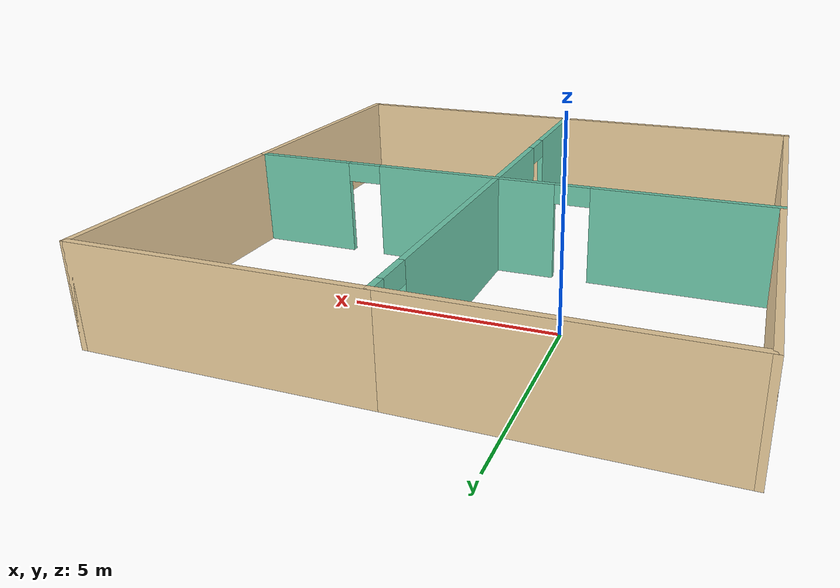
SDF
<?xml version='1.0'?>
<sdf version='1.7'>
  <model name='plane_4'>
    <pose>2.50397 -2.96602 0 0 -0 0</pose>
    <link name='Wall_1'>
      <collision name='Wall_1_Collision'>
        <geometry>
          <box>
            <size>7 0.15 2.5</size>
          </box>
        </geometry>
        <pose>0 0 1.25 0 -0 0</pose>
      </collision>
      <visual name='Wall_1_Visual'>
        <pose>0 0 1.25 0 -0 0</pose>
        <geometry>
          <box>
            <size>7 0.15 2.5</size>
          </box>
        </geometry>
        <material>
          <script>
            <uri>file://media/materials/scripts/gazebo.material</uri>
            <name>Gazebo/Grey</name>
          </script>
          <ambient>0.921569 0.807843 0.615686 1</ambient>
        </material>
        <meta>
          <layer>0</layer>
        </meta>
      </visual>
      <pose>-6.85 -3.425 0 0 -0 1.5708</pose>
    </link>
    <link name='Wall_17'>
      <pose>3.425 0 0 0 -0 0</pose>
      <visual name='Wall_17_Visual_0'>
        <pose>-1.83825 0 1.25 0 -0 0</pose>
        <geometry>
          <box>
            <size>3.3235 0.15 2.5</size>
          </box>
        </geometry>
        <material>
          <script>
            <uri>file://media/materials/scripts/gazebo.material</uri>
            <name>Gazebo/Grey</name>
          </script>
          <ambient>0.435294 0.796078 0.67451 1</ambient>
        </material>
        <meta>
          <layer>0</layer>
        </meta>
      </visual>
      <collision name='Wall_17_Collision_0'>
        <geometry>
          <box>
            <size>3.3235 0.15 2.5</size>
          </box>
        </geometry>
        <pose>-1.83825 0 1.25 0 -0 0</pose>
      </collision>
      <visual name='Wall_17_Visual_1'>
        <pose>2.11175 0 1.25 0 -0 0</pose>
        <geometry>
          <box>
            <size>2.7765 0.15 2.5</size>
          </box>
        </geometry>
        <material>
          <script>
            <uri>file://media/materials/scripts/gazebo.material</uri>
            <name>Gazebo/Grey</name>
          </script>
          <ambient>0.435294 0.796078 0.67451 1</ambient>
        </material>
        <meta>
          <layer>0</layer>
        </meta>
      </visual>
      <collision name='Wall_17_Collision_1'>
        <geometry>
          <box>
            <size>2.7765 0.15 2.5</size>
          </box>
        </geometry>
        <pose>2.11175 0 1.25 0 -0 0</pose>
      </collision>
      <visual name='Wall_17_Visual_2'>
        <pose>0.273504 0 2.25 0 -0 0</pose>
        <geometry>
          <box>
            <size>0.9 0.15 0.5</size>
          </box>
        </geometry>
        <material>
          <script>
            <uri>file://media/materials/scripts/gazebo.material</uri>
            <name>Gazebo/Grey</name>
          </script>
          <ambient>0.435294 0.796078 0.67451 1</ambient>
        </material>
        <meta>
          <layer>0</layer>
        </meta>
      </visual>
      <collision name='Wall_17_Collision_2'>
        <geometry>
          <box>
            <size>0.9 0.15 0.5</size>
          </box>
        </geometry>
        <pose>0.273504 0 2.25 0 -0 0</pose>
      </collision>
    </link>
    <link name='Wall_18'>
      <collision name='Wall_18_Collision'>
        <geometry>
          <box>
            <size>7 0.15 2.5</size>
          </box>
        </geometry>
        <pose>0 0 1.25 0 -0 0</pose>
      </collision>
      <visual name='Wall_18_Visual'>
        <pose>0 0 1.25 0 -0 0</pose>
        <geometry>
          <box>
            <size>7 0.15 2.5</size>
          </box>
        </geometry>
        <material>
          <script>
            <uri>file://media/materials/scripts/gazebo.material</uri>
            <name>Gazebo/Grey</name>
          </script>
          <ambient>0.921569 0.807843 0.615686 1</ambient>
        </material>
        <meta>
          <layer>0</layer>
        </meta>
      </visual>
      <pose>6.85 -3.425 0 0 -0 -1.5708</pose>
    </link>
    <link name='Wall_2'>
      <pose>-3.425 0 0 0 -0 0</pose>
      <visual name='Wall_2_Visual_0'>
        <pose>-1.24968 0 1.25 0 -0 0</pose>
        <geometry>
          <box>
            <size>4.50064 0.15 2.5</size>
          </box>
        </geometry>
        <material>
          <script>
            <uri>file://media/materials/scripts/gazebo.material</uri>
            <name>Gazebo/Grey</name>
          </script>
          <ambient>0.435294 0.796078 0.67451 1</ambient>
        </material>
        <meta>
          <layer>0</layer>
        </meta>
      </visual>
      <collision name='Wall_2_Collision_0'>
        <geometry>
          <box>
            <size>4.50064 0.15 2.5</size>
          </box>
        </geometry>
        <pose>-1.24968 0 1.25 0 -0 0</pose>
      </collision>
      <visual name='Wall_2_Visual_1'>
        <pose>2.70032 0 1.25 0 -0 0</pose>
        <geometry>
          <box>
            <size>1.59936 0.15 2.5</size>
          </box>
        </geometry>
        <material>
          <script>
            <uri>file://media/materials/scripts/gazebo.material</uri>
            <name>Gazebo/Grey</name>
          </script>
          <ambient>0.435294 0.796078 0.67451 1</ambient>
        </material>
        <meta>
          <layer>0</layer>
        </meta>
      </visual>
      <collision name='Wall_2_Collision_1'>
        <geometry>
          <box>
            <size>1.59936 0.15 2.5</size>
          </box>
        </geometry>
        <pose>2.70032 0 1.25 0 -0 0</pose>
      </collision>
      <visual name='Wall_2_Visual_2'>
        <pose>1.45064 0 2.25 0 -0 0</pose>
        <geometry>
          <box>
            <size>0.9 0.15 0.5</size>
          </box>
        </geometry>
        <material>
          <script>
            <uri>file://media/materials/scripts/gazebo.material</uri>
            <name>Gazebo/Grey</name>
          </script>
          <ambient>0.435294 0.796078 0.67451 1</ambient>
        </material>
        <meta>
          <layer>0</layer>
        </meta>
      </visual>
      <collision name='Wall_2_Collision_2'>
        <geometry>
          <box>
            <size>0.9 0.15 0.5</size>
          </box>
        </geometry>
        <pose>1.45064 0 2.25 0 -0 0</pose>
      </collision>
    </link>
    <link name='Wall_20'>
      <collision name='Wall_20_Collision'>
        <geometry>
          <box>
            <size>7 0.15 2.5</size>
          </box>
        </geometry>
        <pose>0 0 1.25 0 -0 0</pose>
      </collision>
      <visual name='Wall_20_Visual'>
        <pose>0 0 1.25 0 -0 0</pose>
        <geometry>
          <box>
            <size>7 0.15 2.5</size>
          </box>
        </geometry>
        <material>
          <script>
            <uri>file://media/materials/scripts/gazebo.material</uri>
            <name>Gazebo/Grey</name>
          </script>
          <ambient>0.921569 0.807843 0.615686 1</ambient>
        </material>
        <meta>
          <layer>0</layer>
        </meta>
      </visual>
      <pose>-6.85 3.425 0 0 -0 1.5708</pose>
    </link>
    <link name='Wall_21'>
      <collision name='Wall_21_Collision'>
        <geometry>
          <box>
            <size>7 0.15 2.5</size>
          </box>
        </geometry>
        <pose>0 0 1.25 0 -0 0</pose>
      </collision>
      <visual name='Wall_21_Visual'>
        <pose>0 0 1.25 0 -0 0</pose>
        <geometry>
          <box>
            <size>7 0.15 2.5</size>
          </box>
        </geometry>
        <material>
          <script>
            <uri>file://media/materials/scripts/gazebo.material</uri>
            <name>Gazebo/Grey</name>
          </script>
          <ambient>0.921569 0.807843 0.615686 1</ambient>
        </material>
        <meta>
          <layer>0</layer>
        </meta>
      </visual>
      <pose>-3.425 6.85 0 0 -0 0</pose>
    </link>
    <link name='Wall_22'>
      <pose>0 3.425 0 0 -0 -1.5708</pose>
      <visual name='Wall_22_Visual_0'>
        <pose>-3.24452 0 1.25 0 -0 0</pose>
        <geometry>
          <box>
            <size>0.510951 0.15 2.5</size>
          </box>
        </geometry>
        <material>
          <script>
            <uri>file://media/materials/scripts/gazebo.material</uri>
            <name>Gazebo/Grey</name>
          </script>
          <ambient>0.435294 0.796078 0.67451 1</ambient>
        </material>
        <meta>
          <layer>0</layer>
        </meta>
      </visual>
      <collision name='Wall_22_Collision_0'>
        <geometry>
          <box>
            <size>0.510951 0.15 2.5</size>
          </box>
        </geometry>
        <pose>-3.24452 0 1.25 0 -0 0</pose>
      </collision>
      <visual name='Wall_22_Visual_1'>
        <pose>0.705476 0 1.25 0 -0 0</pose>
        <geometry>
          <box>
            <size>5.58905 0.15 2.5</size>
          </box>
        </geometry>
        <material>
          <script>
            <uri>file://media/materials/scripts/gazebo.material</uri>
            <name>Gazebo/Grey</name>
          </script>
          <ambient>0.435294 0.796078 0.67451 1</ambient>
        </material>
        <meta>
          <layer>0</layer>
        </meta>
      </visual>
      <collision name='Wall_22_Collision_1'>
        <geometry>
          <box>
            <size>5.58905 0.15 2.5</size>
          </box>
        </geometry>
        <pose>0.705476 0 1.25 0 -0 0</pose>
      </collision>
      <visual name='Wall_22_Visual_2'>
        <pose>-2.53905 0 2.25 0 -0 0</pose>
        <geometry>
          <box>
            <size>0.9 0.15 0.5</size>
          </box>
        </geometry>
        <material>
          <script>
            <uri>file://media/materials/scripts/gazebo.material</uri>
            <name>Gazebo/Grey</name>
          </script>
          <ambient>0.435294 0.796078 0.67451 1</ambient>
        </material>
        <meta>
          <layer>0</layer>
        </meta>
      </visual>
      <collision name='Wall_22_Collision_2'>
        <geometry>
          <box>
            <size>0.9 0.15 0.5</size>
          </box>
        </geometry>
        <pose>-2.53905 0 2.25 0 -0 0</pose>
      </collision>
    </link>
    <link name='Wall_24'>
      <collision name='Wall_24_Collision'>
        <geometry>
          <box>
            <size>7 0.15 2.5</size>
          </box>
        </geometry>
        <pose>0 0 1.25 0 -0 0</pose>
      </collision>
      <visual name='Wall_24_Visual'>
        <pose>0 0 1.25 0 -0 0</pose>
        <geometry>
          <box>
            <size>7 0.15 2.5</size>
          </box>
        </geometry>
        <material>
          <script>
            <uri>file://media/materials/scripts/gazebo.material</uri>
            <name>Gazebo/Grey</name>
          </script>
          <ambient>0.921569 0.807843 0.615686 1</ambient>
        </material>
        <meta>
          <layer>0</layer>
        </meta>
      </visual>
      <pose>3.425 6.85 0 0 -0 0</pose>
    </link>
    <link name='Wall_25'>
      <collision name='Wall_25_Collision'>
        <geometry>
          <box>
            <size>7 0.15 2.5</size>
          </box>
        </geometry>
        <pose>0 0 1.25 0 -0 0</pose>
      </collision>
      <visual name='Wall_25_Visual'>
        <pose>0 0 1.25 0 -0 0</pose>
        <geometry>
          <box>
            <size>7 0.15 2.5</size>
          </box>
        </geometry>
        <material>
          <script>
            <uri>file://media/materials/scripts/gazebo.material</uri>
            <name>Gazebo/Grey</name>
          </script>
          <ambient>0.921569 0.807843 0.615686 1</ambient>
        </material>
        <meta>
          <layer>0</layer>
        </meta>
      </visual>
      <pose>6.85 3.425 0 0 -0 -1.5708</pose>
    </link>
    <link name='Wall_3'>
      <pose>0 -3.425 0 0 -0 -1.5708</pose>
      <visual name='Wall_3_Visual_0'>
        <pose>-1.94721 0 1.25 0 -0 0</pose>
        <geometry>
          <box>
            <size>3.10559 0.15 2.5</size>
          </box>
        </geometry>
        <material>
          <script>
            <uri>file://media/materials/scripts/gazebo.material</uri>
            <name>Gazebo/Grey</name>
          </script>
          <ambient>0.435294 0.796078 0.67451 1</ambient>
        </material>
        <meta>
          <layer>0</layer>
        </meta>
      </visual>
      <collision name='Wall_3_Collision_0'>
        <geometry>
          <box>
            <size>3.10559 0.15 2.5</size>
          </box>
        </geometry>
        <pose>-1.94721 0 1.25 0 -0 0</pose>
      </collision>
      <visual name='Wall_3_Visual_1'>
        <pose>2.00279 0 1.25 0 -0 0</pose>
        <geometry>
          <box>
            <size>2.99442 0.15 2.5</size>
          </box>
        </geometry>
        <material>
          <script>
            <uri>file://media/materials/scripts/gazebo.material</uri>
            <name>Gazebo/Grey</name>
          </script>
          <ambient>0.435294 0.796078 0.67451 1</ambient>
        </material>
        <meta>
          <layer>0</layer>
        </meta>
      </visual>
      <collision name='Wall_3_Collision_1'>
        <geometry>
          <box>
            <size>2.99442 0.15 2.5</size>
          </box>
        </geometry>
        <pose>2.00279 0 1.25 0 -0 0</pose>
      </collision>
      <visual name='Wall_3_Visual_2'>
        <pose>0.055585 0 2.25 0 -0 0</pose>
        <geometry>
          <box>
            <size>0.9 0.15 0.5</size>
          </box>
        </geometry>
        <material>
          <script>
            <uri>file://media/materials/scripts/gazebo.material</uri>
            <name>Gazebo/Grey</name>
          </script>
          <ambient>0.435294 0.796078 0.67451 1</ambient>
        </material>
        <meta>
          <layer>0</layer>
        </meta>
      </visual>
      <collision name='Wall_3_Collision_2'>
        <geometry>
          <box>
            <size>0.9 0.15 0.5</size>
          </box>
        </geometry>
        <pose>0.055585 0 2.25 0 -0 0</pose>
      </collision>
    </link>
    <link name='Wall_4'>
      <collision name='Wall_4_Collision'>
        <geometry>
          <box>
            <size>7 0.15 2.5</size>
          </box>
        </geometry>
        <pose>0 0 1.25 0 -0 0</pose>
      </collision>
      <visual name='Wall_4_Visual'>
        <pose>0 0 1.25 0 -0 0</pose>
        <geometry>
          <box>
            <size>7 0.15 2.5</size>
          </box>
        </geometry>
        <material>
          <script>
            <uri>file://media/materials/scripts/gazebo.material</uri>
            <name>Gazebo/Grey</name>
          </script>
          <ambient>0.921569 0.807843 0.615686 1</ambient>
        </material>
        <meta>
          <layer>0</layer>
        </meta>
      </visual>
      <pose>-3.425 -6.85 0 0 -0 3.14159</pose>
    </link>
    <link name='Wall_6'>
      <collision name='Wall_6_Collision'>
        <geometry>
          <box>
            <size>7 0.15 2.5</size>
          </box>
        </geometry>
        <pose>0 0 1.25 0 -0 0</pose>
      </collision>
      <visual name='Wall_6_Visual'>
        <pose>0 0 1.25 0 -0 0</pose>
        <geometry>
          <box>
            <size>7 0.15 2.5</size>
          </box>
        </geometry>
        <material>
          <script>
            <uri>file://media/materials/scripts/gazebo.material</uri>
            <name>Gazebo/Grey</name>
          </script>
          <ambient>0.921569 0.807843 0.615686 1</ambient>
        </material>
        <meta>
          <layer>0</layer>
        </meta>
      </visual>
      <pose>3.425 -6.85 0 0 -0 0</pose>
    </link>
    <static>1</static>
  </model>
</sdf>
